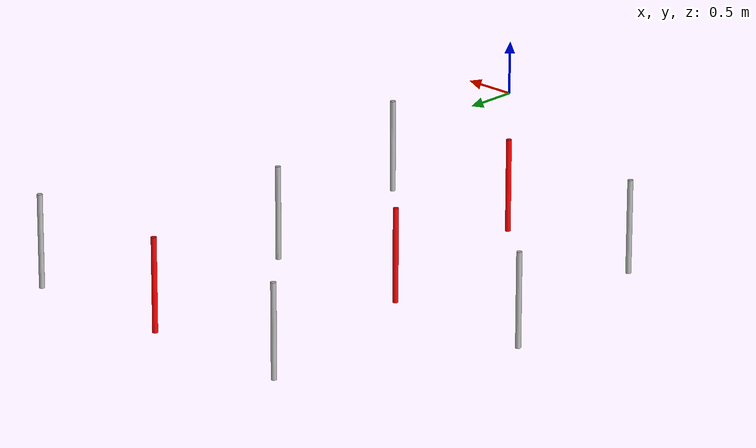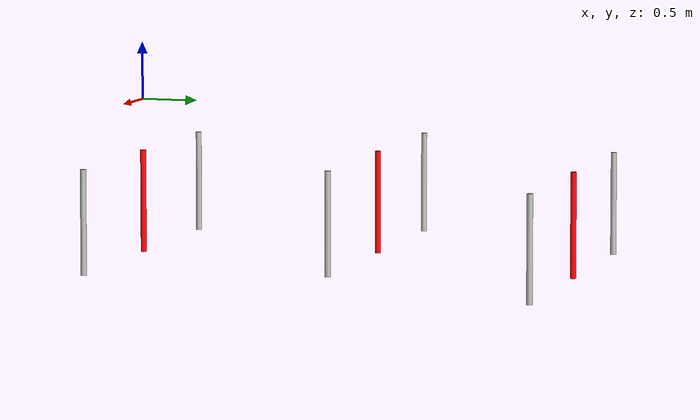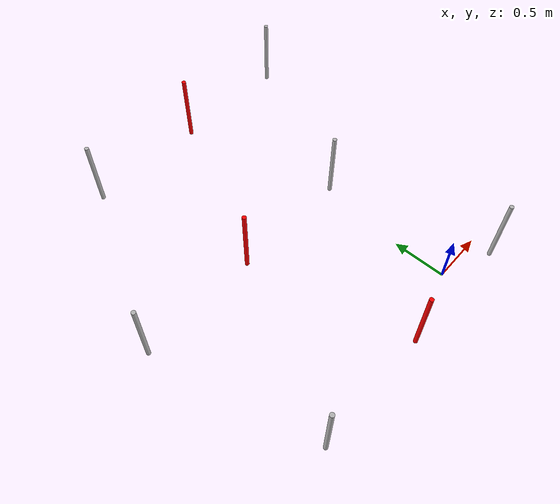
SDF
<?xml version="1.0"?>
<sdf version="1.11">
  <model name="robosub25_slalom">
    <static>1</static>

    <link name="slalom">
      <pose>0 0 0 0 0 0</pose>
      <visual name="slalom_vis">
        <pose>0 0 0 0 0 0</pose>
        <geometry>
          <mesh>
            <uri>model://robosub25/slalom/mesh.dae</uri>
          </mesh>
        </geometry>
      </visual>
      <collision name="slalom_collision">
        <pose>0 0 0 0 0 0</pose>
        <geometry>
          <mesh>
            <uri>model://robosub25/slalom/mesh.dae</uri>
          </mesh>
        </geometry>
      </collision>
    </link>
  </model>
</sdf>
